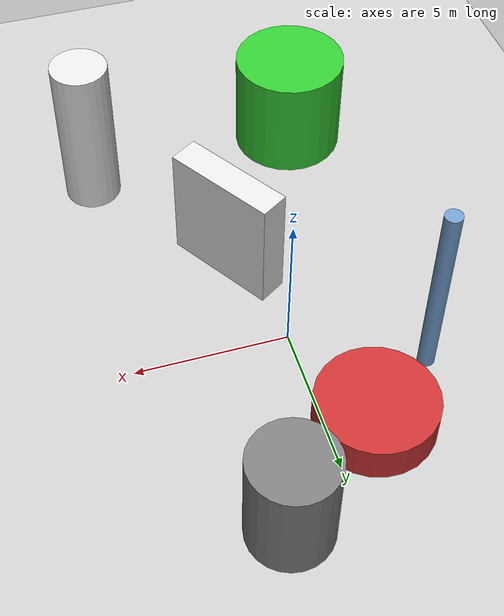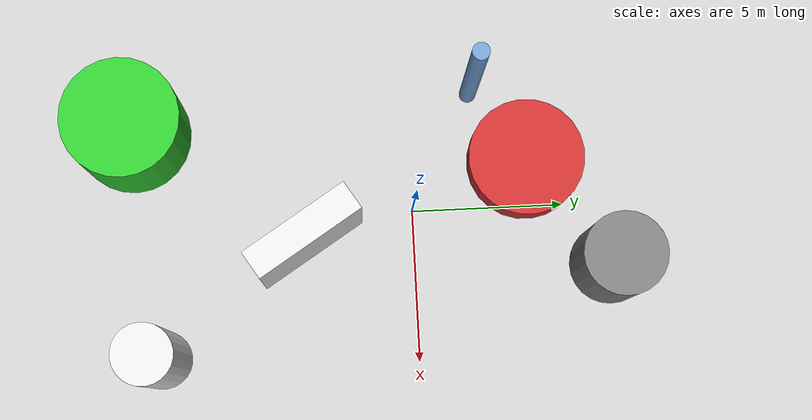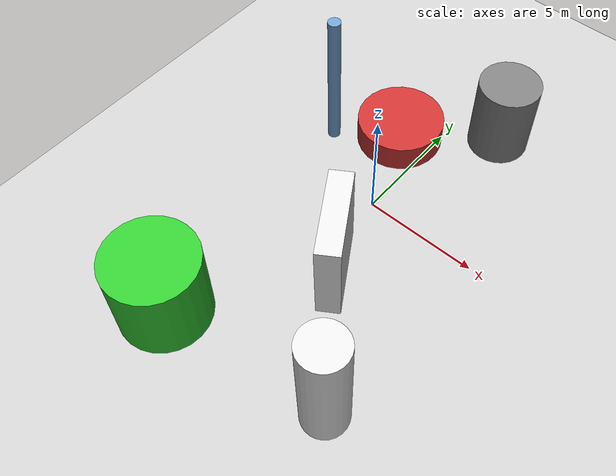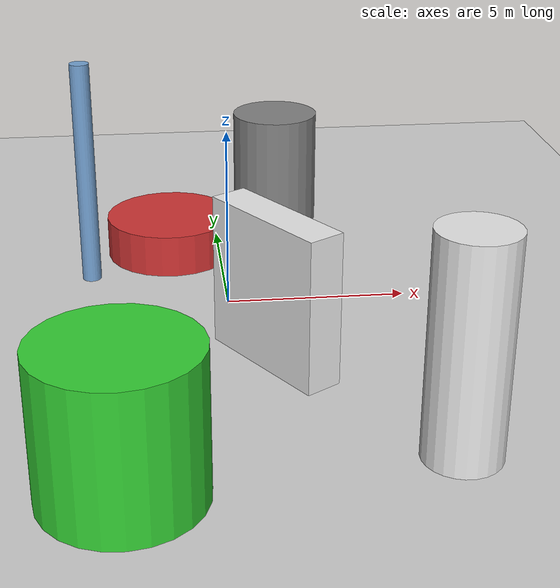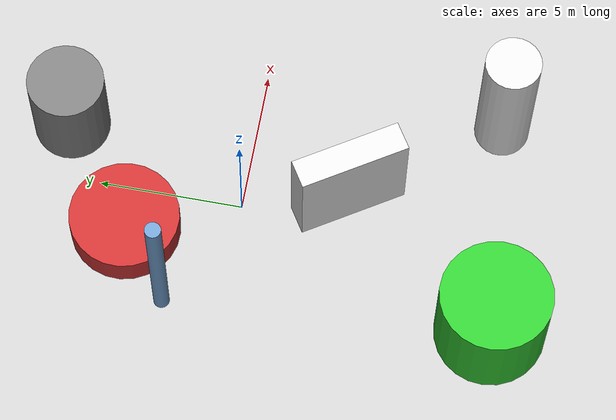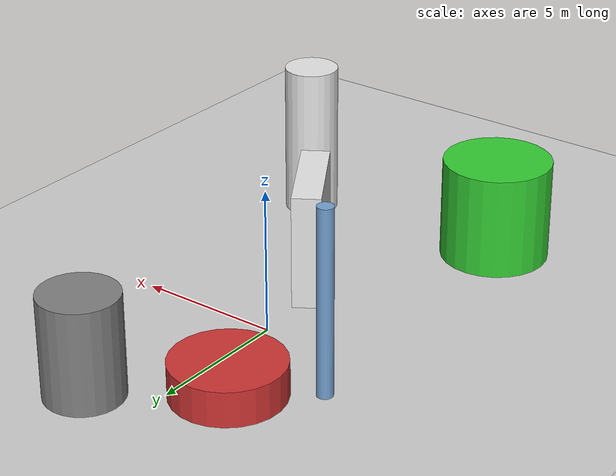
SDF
<?xml version='1.0'?>
<sdf version='1.6'>
  <world name='default'>
    <!-- Sun light -->
    <light name='sun' type='directional'>
      <cast_shadows>1</cast_shadows>
      <pose>0 0 10 0 0 0</pose>
      <diffuse>0.8 0.8 0.8 1</diffuse>
      <specular>0.2 0.2 0.2 1</specular>
      <attenuation>
        <range>1000</range>
        <constant>0.9</constant>
        <linear>0.01</linear>
        <quadratic>0.001</quadratic>
      </attenuation>
      <direction>-0.5 0.1 -0.9</direction>
    </light>

    <!-- Ground plane -->
    <model name='ground_plane'>
      <static>1</static>
      <link name='link'>
        <collision name='collision'>
          <geometry>
            <plane>
              <normal>0 0 1</normal>
              <size>100 100</size>
            </plane>
          </geometry>
          <surface>
            <contact>
              <collide_bitmask>65535</collide_bitmask>
              <ode/>
            </contact>
            <friction>
              <ode>
                <mu>100</mu>
                <mu2>50</mu2>
              </ode>
              <torsional><ode/></torsional>
            </friction>
            <bounce/>
          </surface>
          <max_contacts>10</max_contacts>
        </collision>
        <visual name='visual'>
          <cast_shadows>0</cast_shadows>
          <geometry>
            <plane>
              <normal>0 0 1</normal>
              <size>100 100</size>
            </plane>
          </geometry>
          <material>
            <script>
              <uri>file://media/materials/scripts/gazebo.material</uri>
              <n>Gazebo/Grey</n>
            </script>
          </material>
        </visual>
      </link>
    </model>

    <!-- Environment -->
    <magnetic_field>6e-06 2.3e-05 -4.2e-05</magnetic_field>
    <atmosphere type='adiabatic'/>
    <physics name='default_physics' default='0' type='ode'>
      <gravity>0 0 -9.8</gravity>
      <max_step_size>0.004</max_step_size>
      <real_time_factor>1</real_time_factor>
      <real_time_update_rate>250</real_time_update_rate>
    </physics>
    <scene>
      <ambient>0.4 0.4 0.4 1</ambient>
      <background>0.7 0.7 0.7 1</background>
      <shadows>1</shadows>
    </scene>
    <wind/>
    <spherical_coordinates>
      <surface_model>EARTH_WGS84</surface_model>
      <latitude_deg>0</latitude_deg>
      <longitude_deg>0</longitude_deg>
      <elevation>0</elevation>
      <heading_deg>0</heading_deg>
    </spherical_coordinates>

    <!-- ============ OBSTACLES (6) ============ -->
    <model name='obs_00'>
      <static>1</static>
      <link name='link'>
        <visual name='visual'>
          <geometry>
            <cylinder>
              <radius>0.9546</radius>
              <length>5.4763</length>
            </cylinder>
          </geometry>
          <material>
            <script>
              <n>Gazebo/White</n>
              <uri>file://media/materials/scripts/gazebo.material</uri>
            </script>
            <ambient>0.9 0.9 0.9 1</ambient>
          </material>
        </visual>
        <collision name='collision'>
          <geometry>
            <cylinder>
              <radius>0.9546</radius>
              <length>5.4763</length>
            </cylinder>
          </geometry>
          <max_contacts>10</max_contacts>
          <surface>
            <contact><ode/></contact>
            <bounce/>
            <friction>
              <ode><mu>1</mu><mu2>1</mu2></ode>
              <torsional><ode/></torsional>
            </friction>
          </surface>
        </collision>
      </link>
      <pose>4.5416 -8.4215 2.7381 0 0 1.9316</pose>
    </model>

    <model name='obs_01'>
      <static>1</static>
      <link name='link'>
        <visual name='visual'>
          <geometry>
            <cylinder>
              <radius>1.3294</radius>
              <length>3.5432</length>
            </cylinder>
          </geometry>
          <material>
            <script>
              <n>Gazebo/Grey</n>
              <uri>file://media/materials/scripts/gazebo.material</uri>
            </script>
            <ambient>0.5 0.5 0.5 1</ambient>
          </material>
        </visual>
        <collision name='collision'>
          <geometry>
            <cylinder>
              <radius>1.3294</radius>
              <length>3.5432</length>
            </cylinder>
          </geometry>
          <max_contacts>10</max_contacts>
          <surface>
            <contact><ode/></contact>
            <bounce/>
            <friction>
              <ode><mu>1</mu><mu2>1</mu2></ode>
              <torsional><ode/></torsional>
            </friction>
          </surface>
        </collision>
      </link>
      <pose>2.0491 6.4468 1.7716 0 0 0.2357</pose>
    </model>

    <model name='obs_02'>
      <static>1</static>
      <link name='link'>
        <visual name='visual'>
          <geometry>
            <box>
              <size>3.8348 0.9997 4.0379</size>
            </box>
          </geometry>
          <material>
            <script>
              <n>Gazebo/White</n>
              <uri>file://media/materials/scripts/gazebo.material</uri>
            </script>
            <ambient>0.9 0.9 0.9 1</ambient>
          </material>
        </visual>
        <collision name='collision'>
          <geometry>
            <box>
              <size>3.8348 0.9997 4.0379</size>
            </box>
          </geometry>
          <max_contacts>10</max_contacts>
          <surface>
            <contact><ode/></contact>
            <bounce/>
            <friction>
              <ode><mu>1</mu><mu2>1</mu2></ode>
              <torsional><ode/></torsional>
            </friction>
          </surface>
        </collision>
      </link>
      <pose>0.9095 -3.5758 2.0189 0 0 2.1344</pose>
    </model>

    <model name='obs_03'>
      <static>1</static>
      <link name='link'>
        <visual name='visual'>
          <geometry>
            <cylinder>
              <radius>0.2744</radius>
              <length>6.4496</length>
            </cylinder>
          </geometry>
          <material>
            <script>
              <n>Gazebo/Blue</n>
              <uri>file://media/materials/scripts/gazebo.material</uri>
            </script>
            <ambient>0.447 0.624 0.812 1</ambient>
          </material>
        </visual>
        <collision name='collision'>
          <geometry>
            <cylinder>
              <radius>0.2744</radius>
              <length>6.4496</length>
            </cylinder>
          </geometry>
          <max_contacts>10</max_contacts>
          <surface>
            <contact><ode/></contact>
            <bounce/>
            <friction>
              <ode><mu>1</mu><mu2>1</mu2></ode>
              <torsional><ode/></torsional>
            </friction>
          </surface>
        </collision>
      </link>
      <pose>-3.8701 2.0524 3.2248 0 0 0.1093</pose>
    </model>

    <model name='obs_04'>
      <static>1</static>
      <link name='link'>
        <visual name='visual'>
          <geometry>
            <cylinder>
              <radius>1.9065</radius>
              <length>1.2267</length>
            </cylinder>
          </geometry>
          <material>
            <script>
              <n>Gazebo/Red</n>
              <uri>file://media/materials/scripts/gazebo.material</uri>
            </script>
            <ambient>0.8 0.2 0.2 1</ambient>
          </material>
        </visual>
        <collision name='collision'>
          <geometry>
            <cylinder>
              <radius>1.9065</radius>
              <length>1.2267</length>
            </cylinder>
          </geometry>
          <max_contacts>10</max_contacts>
          <surface>
            <contact><ode/></contact>
            <bounce/>
            <friction>
              <ode><mu>1</mu><mu2>1</mu2></ode>
              <torsional><ode/></torsional>
            </friction>
          </surface>
        </collision>
      </link>
      <pose>-1.4777 3.7953 0.6133 0 0 1.1377</pose>
    </model>

    <model name='obs_05'>
      <static>1</static>
      <link name='link'>
        <visual name='visual'>
          <geometry>
            <cylinder>
              <radius>1.9053</radius>
              <length>3.6041</length>
            </cylinder>
          </geometry>
          <material>
            <script>
              <n>Gazebo/Green</n>
              <uri>file://media/materials/scripts/gazebo.material</uri>
            </script>
            <ambient>0.2 0.8 0.2 1</ambient>
          </material>
        </visual>
        <collision name='collision'>
          <geometry>
            <cylinder>
              <radius>1.9053</radius>
              <length>3.6041</length>
            </cylinder>
          </geometry>
          <max_contacts>10</max_contacts>
          <surface>
            <contact><ode/></contact>
            <bounce/>
            <friction>
              <ode><mu>1</mu><mu2>1</mu2></ode>
              <torsional><ode/></torsional>
            </friction>
          </surface>
        </collision>
      </link>
      <pose>-2.9691 -9.1529 1.8020 0 0 2.1333</pose>
    </model>

    <!-- GUI camera -->
    <gui fullscreen='0'>
      <camera name='user_camera'>
        <pose>-15 0 18 0 0.85 0.15</pose>
        <view_controller>orbit</view_controller>
        <projection_type>perspective</projection_type>
      </camera>
    </gui>
  </world>
</sdf>
